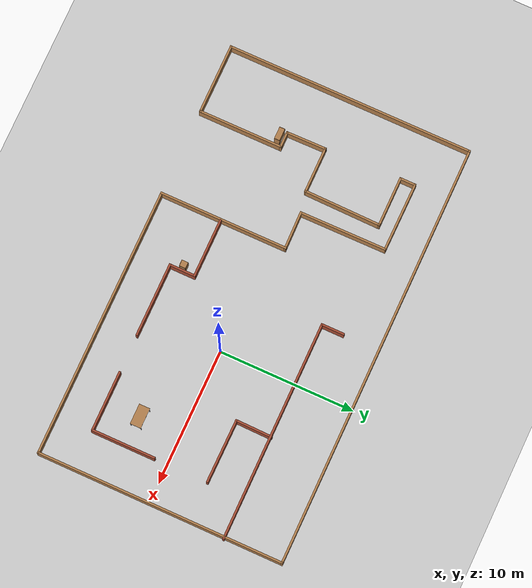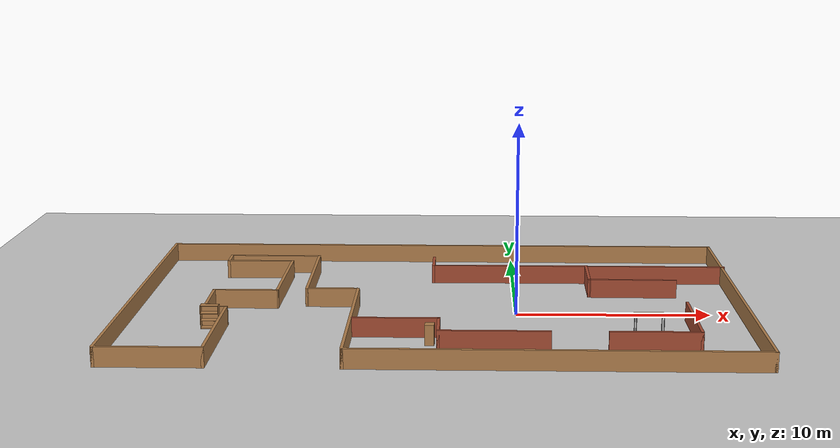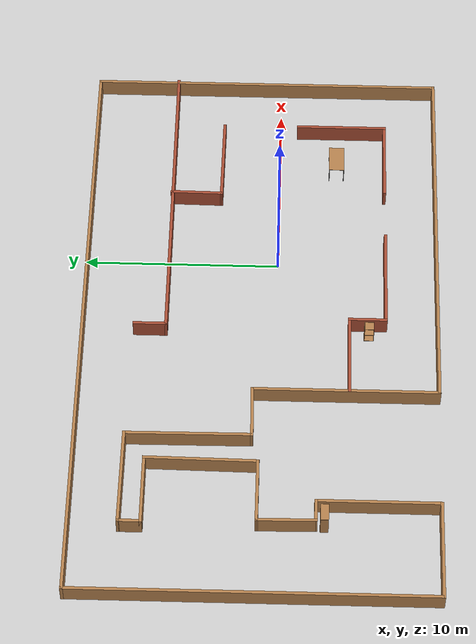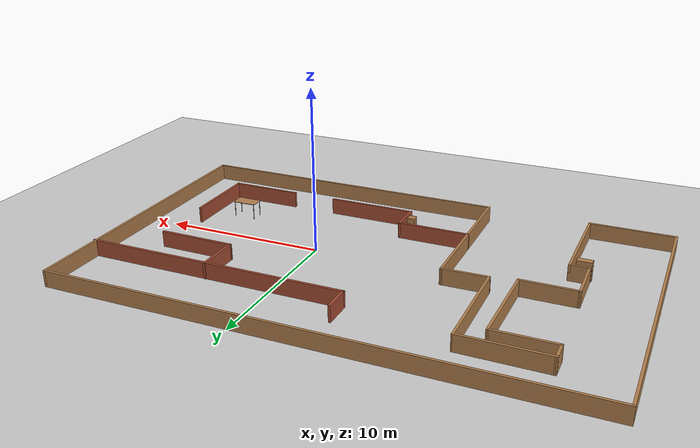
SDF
<sdf version="1.6">
 <world name="default">
  <light name="sun" type="directional">
   <pose>0 0 10 0 -0 0</pose>
   <diffuse>0.8 0.8 0.8 1</diffuse>
   <specular>0.2 0.2 0.2 1</specular>
   <attenuation>
    <range>1000</range>
    <constant>0.9</constant>
    <linear>0.01</linear>
    <quadratic>0.001</quadratic>
   </attenuation>
   <direction>-0.5 0.1 -0.9</direction>
  </light>
  <model name="ground_plane">
   <static>1</static>
   <link name="link">
    <collision name="collision">
     <geometry><plane><normal>0 0 1</normal><size>100 100</size></plane></geometry>
     <surface>
      <contact><collide_bitmask>65535</collide_bitmask></contact>
      <friction><ode><mu>100</mu><mu2>50</mu2></ode></friction>
     </surface>
    </collision>
    <visual name="visual">
     <cast_shadows>0</cast_shadows>
     <geometry><plane><normal>0 0 1</normal><size>100 100</size></plane></geometry>
     <material>
      <script><uri>file://media/materials/scripts/gazebo.material</uri><name>Gazebo/Grey</name></script>
     </material>
    </visual>
   </link>
  </model>
  <gravity>0 0 -9.8</gravity>
  <magnetic_field>6e-06 2.3e-05 -4.2e-05</magnetic_field>
  <atmosphere type="adiabatic"/>
  <physics name="default_physics" default="0" type="ode">
   <max_step_size>0.001</max_step_size>
   <real_time_factor>1</real_time_factor>
   <real_time_update_rate>1000</real_time_update_rate>
  </physics>
  <scene><ambient>0.4 0.4 0.4 1</ambient><background>0.7 0.7 0.7 1</background><shadows>1</shadows></scene>
  <audio><device>default</device></audio>
  <spherical_coordinates>
   <surface_model>EARTH_WGS84</surface_model>
   <latitude_deg>0</latitude_deg>
   <longitude_deg>0</longitude_deg>
   <elevation>0</elevation>
   <heading_deg>0</heading_deg>
  </spherical_coordinates>
  <model name="world1">
   <pose>-4.0635 0.825 0 0 -0 0</pose>
   <link name="Wall_0">
    <collision name="Wall_0_Collision">
     <geometry><box><size>9.5 0.15 1</size></box></geometry>
     <pose>0 0 0.5 0 -0 0</pose>
    </collision>
    <visual name="Wall_0_Visual">
     <pose>0 0 0.5 0 -0 0</pose>
     <geometry><box><size>9.5 0.15 1</size></box></geometry>
     <material>
      <script><uri>file://media/materials/scripts/gazebo.material</uri><name>Gazebo/Wood</name></script>
      <ambient>1 1 1 1</ambient>
     </material>
     <meta><layer>0</layer></meta>
    </visual>
    <pose>-4.2225 -4.375 0 0 -0 -1.5708</pose>
   </link>
   <link name="Wall_1">
    <collision name="Wall_1_Collision">
     <geometry><box><size>20 0.15 1</size></box></geometry>
     <pose>0 0 0.5 0 -0 0</pose>
    </collision>
    <visual name="Wall_1_Visual">
     <pose>0 0 0.5 0 -0 0</pose>
     <geometry><box><size>20 0.15 1</size></box></geometry>
     <material>
      <script><uri>file://media/materials/scripts/gazebo.material</uri><name>Gazebo/Wood</name></script>
      <ambient>1 1 1 1</ambient>
     </material>
     <meta><layer>0</layer></meta>
    </visual>
    <pose>5.7025 -9.05 0 0 -0 0</pose>
   </link>
   <link name="Wall_10">
    <collision name="Wall_10_Collision">
     <geometry><box><size>5.73247 0.15 1</size></box></geometry>
     <pose>0 0 0.5 0 -0 0</pose>
    </collision>
    <visual name="Wall_10_Visual">
     <pose>0 0 0.5 0 -0 0</pose>
     <geometry><box><size>5.73247 0.15 1</size></box></geometry>
     <material>
      <script><uri>file://media/materials/scripts/gazebo.material</uri><name>Gazebo/Wood</name></script>
      <ambient>1 1 1 1</ambient>
     </material>
     <meta><layer>0</layer></meta>
    </visual>
    <pose>-8.413 2.709 0 0 -0 1.55629</pose>
   </link>
   <link name="Wall_11">
    <collision name="Wall_11_Collision">
     <geometry><box><size>3.75 0.15 1</size></box></geometry>
     <pose>0 0 0.5 0 -0 0</pose>
    </collision>
    <visual name="Wall_11_Visual">
     <pose>0 0 0.5 0 -0 0</pose>
     <geometry><box><size>3.75 0.15 1</size></box></geometry>
     <material>
      <script><uri>file://media/materials/scripts/gazebo.material</uri><name>Gazebo/Wood</name></script>
      <ambient>1 1 1 1</ambient>
     </material>
     <meta><layer>0</layer></meta>
    </visual>
    <pose>-10.1725 5.5 0 0 -0 3.14159</pose>
   </link>
   <link name="Wall_12">
    <collision name="Wall_12_Collision">
     <geometry><box><size>1.25 0.15 1</size></box></geometry>
     <pose>0 0 0.5 0 -0 0</pose>
    </collision>
    <visual name="Wall_12_Visual">
     <pose>0 0 0.5 0 -0 0</pose>
     <geometry><box><size>1.25 0.15 1</size></box></geometry>
     <material>
      <script><uri>file://media/materials/scripts/gazebo.material</uri><name>Gazebo/Wood</name></script>
      <ambient>1 1 1 1</ambient>
     </material>
     <meta><layer>0</layer></meta>
    </visual>
    <pose>-11.9725 6.05 0 0 -0 1.5708</pose>
   </link>
   <link name="Wall_13">
    <collision name="Wall_13_Collision">
     <geometry><box><size>5.1506 0.15 1</size></box></geometry>
     <pose>0 0 0.5 0 -0 0</pose>
    </collision>
    <visual name="Wall_13_Visual">
     <pose>0 0 0.5 0 -0 0</pose>
     <geometry><box><size>5.1506 0.15 1</size></box></geometry>
     <material>
      <script><uri>file://media/materials/scripts/gazebo.material</uri><name>Gazebo/Wood</name></script>
      <ambient>1 1 1 1</ambient>
     </material>
     <meta><layer>0</layer></meta>
    </visual>
    <pose>-9.472 6.58 0 0 -0 -0.007998</pose>
   </link>
   <link name="Wall_14">
    <collision name="Wall_14_Collision">
     <geometry><box><size>6.45976 0.15 1</size></box></geometry>
     <pose>0 0 0.5 0 -0 0</pose>
    </collision>
    <visual name="Wall_14_Visual">
     <pose>0 0 0.5 0 -0 0</pose>
     <geometry><box><size>6.45976 0.15 1</size></box></geometry>
     <material>
      <script><uri>file://media/materials/scripts/gazebo.material</uri><name>Gazebo/Wood</name></script>
      <ambient>1 1 1 1</ambient>
     </material>
     <meta><layer>0</layer></meta>
    </visual>
    <pose>-6.9515 3.405 0 0 -0 -1.56446</pose>
   </link>
   <link name="Wall_15">
    <collision name="Wall_15_Collision">
     <geometry><box><size>2.85985 0.15 1</size></box></geometry>
     <pose>0 0 0.5 0 -0 0</pose>
    </collision>
    <visual name="Wall_15_Visual">
     <pose>0 0 0.5 0 -0 0</pose>
     <geometry><box><size>2.85985 0.15 1</size></box></geometry>
     <material>
      <script><uri>file://media/materials/scripts/gazebo.material</uri><name>Gazebo/Wood</name></script>
      <ambient>1 1 1 1</ambient>
     </material>
     <meta><layer>0</layer></meta>
    </visual>
    <pose>-5.577 0.275 0 0 -0 0.018455</pose>
   </link>
   <link name="Wall_17">
    <collision name="Wall_17_Collision">
     <geometry><box><size>16.25 0.15 1</size></box></geometry>
     <pose>0 0 0.5 0 -0 0</pose>
    </collision>
    <visual name="Wall_17_Visual">
     <pose>0 0 0.5 0 -0 0</pose>
     <geometry><box><size>16.25 0.15 1</size></box></geometry>
     <material>
      <script><uri>file://media/materials/scripts/gazebo.material</uri><name>Gazebo/Bricks</name></script>
      <ambient>1 1 1 1</ambient>
     </material>
     <meta><layer>0</layer></meta>
    </visual>
    <pose>7.6725 4.791 0 0 -0 3.14159</pose>
   </link>
   <link name="Wall_18">
    <collision name="Wall_18_Collision">
     <geometry><box><size>1.75 0.15 1</size></box></geometry>
     <pose>0 0 0.5 0 -0 0</pose>
    </collision>
    <visual name="Wall_18_Visual">
     <pose>0 0 0.5 0 -0 0</pose>
     <geometry><box><size>1.75 0.15 1</size></box></geometry>
     <material>
      <script><uri>file://media/materials/scripts/gazebo.material</uri><name>Gazebo/Bricks</name></script>
      <ambient>1 1 1 1</ambient>
     </material>
     <meta><layer>0</layer></meta>
    </visual>
    <pose>-0.3775 5.591 0 0 -0 1.5708</pose>
   </link>
   <link name="Wall_2">
    <collision name="Wall_2_Collision">
     <geometry><box><size>18.25 0.15 1</size></box></geometry>
     <pose>0 0 0.5 0 -0 0</pose>
    </collision>
    <visual name="Wall_2_Visual">
     <pose>0 0 0.5 0 -0 0</pose>
     <geometry><box><size>18.25 0.15 1</size></box></geometry>
     <material>
      <script><uri>file://media/materials/scripts/gazebo.material</uri><name>Gazebo/Wood</name></script>
      <ambient>1 1 1 1</ambient>
     </material>
     <meta><layer>0</layer></meta>
    </visual>
    <pose>15.6275 0 0 0 -0 1.5708</pose>
   </link>
   <link name="Wall_20">
    <collision name="Wall_20_Collision">
     <geometry><box><size>4.5 0.15 1</size></box></geometry>
     <pose>0 0 0.5 0 -0 0</pose>
    </collision>
    <visual name="Wall_20_Visual">
     <pose>0 0 0.5 0 -0 0</pose>
     <geometry><box><size>4.5 0.15 1</size></box></geometry>
     <material>
      <script><uri>file://media/materials/scripts/gazebo.material</uri><name>Gazebo/Bricks</name></script>
      <ambient>1 1 1 1</ambient>
     </material>
     <meta><layer>0</layer></meta>
    </visual>
    <pose>-2.0475 -4.554 0 0 -0 0</pose>
   </link>
   <link name="Wall_21">
    <collision name="Wall_21_Collision">
     <geometry><box><size>2 0.15 1</size></box></geometry>
     <pose>0 0 0.5 0 -0 0</pose>
    </collision>
    <visual name="Wall_21_Visual">
     <pose>0 0 0.5 0 -0 0</pose>
     <geometry><box><size>2 0.15 1</size></box></geometry>
     <material>
      <script><uri>file://media/materials/scripts/gazebo.material</uri><name>Gazebo/Bricks</name></script>
      <ambient>1 1 1 1</ambient>
     </material>
     <meta><layer>0</layer></meta>
    </visual>
    <pose>0.1275 -5.479 0 0 -0 -1.5708</pose>
   </link>
   <link name="Wall_22">
    <collision name="Wall_22_Collision">
     <geometry><box><size>5.5 0.15 1</size></box></geometry>
     <pose>0 0 0.5 0 -0 0</pose>
    </collision>
    <visual name="Wall_22_Visual">
     <pose>0 0 0.5 0 -0 0</pose>
     <geometry><box><size>5.5 0.15 1</size></box></geometry>
     <material>
      <script><uri>file://media/materials/scripts/gazebo.material</uri><name>Gazebo/Bricks</name></script>
      <ambient>1 1 1 1</ambient>
     </material>
     <meta><layer>0</layer></meta>
    </visual>
    <pose>2.8025 -6.404 0 0 -0 0</pose>
   </link>
   <link name="Wall_24">
    <collision name="Wall_24_Collision">
     <geometry><box><size>4.5 0.15 1</size></box></geometry>
     <pose>0 0 0.5 0 -0 0</pose>
    </collision>
    <visual name="Wall_24_Visual">
     <pose>0 0 0.5 0 -0 0</pose>
     <geometry><box><size>4.5 0.15 1</size></box></geometry>
     <material>
      <script><uri>file://media/materials/scripts/gazebo.material</uri><name>Gazebo/Bricks</name></script>
      <ambient>1 1 1 1</ambient>
     </material>
     <meta><layer>0</layer></meta>
    </visual>
    <pose>10.5345 -6.375 0 0 -0 0</pose>
   </link>
   <link name="Wall_25">
    <collision name="Wall_25_Collision">
     <geometry><box><size>4.75 0.15 1</size></box></geometry>
     <pose>0 0 0.5 0 -0 0</pose>
    </collision>
    <visual name="Wall_25_Visual">
     <pose>0 0 0.5 0 -0 0</pose>
     <geometry><box><size>4.75 0.15 1</size></box></geometry>
     <material>
      <script><uri>file://media/materials/scripts/gazebo.material</uri><name>Gazebo/Bricks</name></script>
      <ambient>1 1 1 1</ambient>
     </material>
     <meta><layer>0</layer></meta>
    </visual>
    <pose>12.7095 -4.075 0 0 -0 1.5708</pose>
   </link>
   <link name="Wall_27">
    <collision name="Wall_27_Collision">
     <geometry><box><size>2.75 0.15 1</size></box></geometry>
     <pose>0 0 0.5 0 -0 0</pose>
    </collision>
    <visual name="Wall_27_Visual">
     <pose>0 0 0.5 0 -0 0</pose>
     <geometry><box><size>2.75 0.15 1</size></box></geometry>
     <material>
      <script><uri>file://media/materials/scripts/gazebo.material</uri><name>Gazebo/Bricks</name></script>
      <ambient>1 1 1 1</ambient>
     </material>
     <meta><layer>0</layer></meta>
    </visual>
    <pose>8.0965 3.531 0 0 -0 -1.58618</pose>
   </link>
   <link name="Wall_28">
    <collision name="Wall_28_Collision">
     <geometry><box><size>4.7492 0.15 1</size></box></geometry>
     <pose>0 0 0.5 0 -0 0</pose>
    </collision>
    <visual name="Wall_28_Visual">
     <pose>0 0 0.5 0 -0 0</pose>
     <geometry><box><size>4.7492 0.15 1</size></box></geometry>
     <material>
      <script><uri>file://media/materials/scripts/gazebo.material</uri><name>Gazebo/Bricks</name></script>
      <ambient>1 1 1 1</ambient>
     </material>
     <meta><layer>0</layer></meta>
    </visual>
    <pose>10.376 2.211 0 0 -0 -0.008697</pose>
   </link>
   <link name="Wall_3">
    <collision name="Wall_3_Collision">
     <geometry><box><size>31.5 0.15 1</size></box></geometry>
     <pose>0 0 0.5 0 -0 0</pose>
    </collision>
    <visual name="Wall_3_Visual">
     <pose>0 0 0.5 0 -0 0</pose>
     <geometry><box><size>31.5 0.15 1</size></box></geometry>
     <material>
      <script><uri>file://media/materials/scripts/gazebo.material</uri><name>Gazebo/Wood</name></script>
      <ambient>1 1 1 1</ambient>
     </material>
     <meta><layer>0</layer></meta>
    </visual>
    <pose>-0.0475 9.05 0 0 -0 3.14159</pose>
   </link>
   <link name="Wall_4">
    <collision name="Wall_4_Collision">
     <geometry><box><size>18.25 0.15 1</size></box></geometry>
     <pose>0 0 0.5 0 -0 0</pose>
    </collision>
    <visual name="Wall_4_Visual">
     <pose>0 0 0.5 0 -0 0</pose>
     <geometry><box><size>18.25 0.15 1</size></box></geometry>
     <material>
      <script><uri>file://media/materials/scripts/gazebo.material</uri><name>Gazebo/Wood</name></script>
      <ambient>1 1 1 1</ambient>
     </material>
     <meta><layer>0</layer></meta>
    </visual>
    <pose>-15.7225 0 0 0 -0 -1.5708</pose>
   </link>
   <link name="Wall_5">
    <collision name="Wall_5_Collision">
     <geometry><box><size>5.25 0.15 1</size></box></geometry>
     <pose>0 0 0.5 0 -0 0</pose>
    </collision>
    <visual name="Wall_5_Visual">
     <pose>0 0 0.5 0 -0 0</pose>
     <geometry><box><size>5.25 0.15 1</size></box></geometry>
     <material>
      <script><uri>file://media/materials/scripts/gazebo.material</uri><name>Gazebo/Wood</name></script>
      <ambient>1 1 1 1</ambient>
     </material>
     <meta><layer>0</layer></meta>
    </visual>
    <pose>-13.1725 -9.05 0 0 -0 0</pose>
   </link>
   <link name="Wall_6">
    <collision name="Wall_6_Collision">
     <geometry><box><size>6.25 0.15 1</size></box></geometry>
     <pose>0 0 0.5 0 -0 0</pose>
    </collision>
    <visual name="Wall_6_Visual">
     <pose>0 0 0.5 0 -0 0</pose>
     <geometry><box><size>6.25 0.15 1</size></box></geometry>
     <material>
      <script><uri>file://media/materials/scripts/gazebo.material</uri><name>Gazebo/Wood</name></script>
      <ambient>1 1 1 1</ambient>
     </material>
     <meta><layer>0</layer></meta>
    </visual>
    <pose>-10.6225 -6 0 0 -0 1.5708</pose>
   </link>
   <link name="Wall_7">
    <collision name="Wall_7_Collision">
     <geometry><box><size>1.25 0.15 1</size></box></geometry>
     <pose>0 0 0.5 0 -0 0</pose>
    </collision>
    <visual name="Wall_7_Visual">
     <pose>0 0 0.5 0 -0 0</pose>
     <geometry><box><size>1.25 0.15 1</size></box></geometry>
     <material>
      <script><uri>file://media/materials/scripts/gazebo.material</uri><name>Gazebo/Wood</name></script>
      <ambient>1 1 1 1</ambient>
     </material>
     <meta><layer>0</layer></meta>
    </visual>
    <pose>-11.1725 -2.95 0 0 -0 3.14159</pose>
   </link>
   <link name="Wall_8">
    <collision name="Wall_8_Collision">
     <geometry><box><size>3.01796 0.15 1</size></box></geometry>
     <pose>0 0 0.5 0 -0 0</pose>
    </collision>
    <visual name="Wall_8_Visual">
     <pose>0 0 0.5 0 -0 0</pose>
     <geometry><box><size>3.01796 0.15 1</size></box></geometry>
     <material>
      <script><uri>file://media/materials/scripts/gazebo.material</uri><name>Gazebo/Wood</name></script>
      <ambient>1 1 1 1</ambient>
     </material>
     <meta><layer>0</layer></meta>
    </visual>
    <pose>-11.7425 -1.516 0 0 -0 1.58474</pose>
   </link>
   <link name="Wall_9">
    <collision name="Wall_9_Collision">
     <geometry><box><size>3.45907 0.15 1</size></box></geometry>
     <pose>0 0 0.5 0 -0 0</pose>
    </collision>
    <visual name="Wall_9_Visual">
     <pose>0 0 0.5 0 -0 0</pose>
     <geometry><box><size>3.45907 0.15 1</size></box></geometry>
     <material>
      <script><uri>file://media/materials/scripts/gazebo.material</uri><name>Gazebo/Wood</name></script>
      <ambient>1 1 1 1</ambient>
     </material>
     <meta><layer>0</layer></meta>
    </visual>
    <pose>-10.108 -0.082 0 0 -0 0</pose>
   </link>
   <static>1</static>
  </model>
  <model name="cabinet">
   <static>1</static>
   <link name="cabinet_bottom_plate">
    <inertial>
     <pose>0 0 -1 0 -0 0</pose>
     <inertia><ixx>2.05</ixx><ixy>0</ixy><ixz>0</ixz><iyy>2.05</iyy><iyz>0</iyz><izz>2.05</izz></inertia>
     <mass>25</mass>
    </inertial>
    <collision name="cabinet_bottom_plate_geom">
     <pose>0 0 0.01 0 -0 0</pose>
     <geometry><box><size>0.45 0.45 0.02</size></box></geometry>
    </collision>
    <visual name="cabinet_bottom_plate_geom_visual">
     <pose>0 0 0.01 0 -0 0</pose>
     <geometry><box><size>0.45 0.45 0.02</size></box></geometry>
     <material>
      <script><uri>file://media/materials/scripts/gazebo.material</uri><name>Gazebo/Wood</name></script>
     </material>
    </visual>
    <collision name="cabinet_bottom_plate_geom_cabinet_back_plate">
     <pose>0.235 0 0.51 0 -0 0</pose>
     <geometry><box><size>0.02 0.45 1.02</size></box></geometry>
    </collision>
    <visual name="cabinet_bottom_plate_geom_cabinet_back_plate_visual">
     <pose>0.235 0 0.51 0 -0 0</pose>
     <geometry><box><size>0.02 0.45 1.02</size></box></geometry>
     <material>
      <script><uri>file://media/materials/scripts/gazebo.material</uri><name>Gazebo/Wood</name></script>
     </material>
    </visual>
    <collision name="cabinet_bottom_plate_geom_cabinet_left_plate">
     <pose>0 0.235 0.51 0 -0 0</pose>
     <geometry><box><size>0.45 0.02 1.02</size></box></geometry>
    </collision>
    <visual name="cabinet_bottom_plate_geom_cabinet_left_plate_visual">
     <pose>0 0.235 0.51 0 -0 0</pose>
     <geometry><box><size>0.45 0.02 1.02</size></box></geometry>
     <material>
      <script><uri>file://media/materials/scripts/gazebo.material</uri><name>Gazebo/Wood</name></script>
     </material>
    </visual>
    <collision name="cabinet_bottom_plate_geom_cabinet_middle_plate">
     <pose>0 0 0.51 0 -0 0</pose>
     <geometry><box><size>0.45 0.45 0.02</size></box></geometry>
    </collision>
    <visual name="cabinet_bottom_plate_geom_cabinet_middle_plate_visual">
     <pose>0 0 0.51 0 -0 0</pose>
     <geometry><box><size>0.45 0.45 0.02</size></box></geometry>
     <material>
      <script><uri>file://media/materials/scripts/gazebo.material</uri><name>Gazebo/Wood</name></script>
     </material>
    </visual>
    <collision name="cabinet_bottom_plate_geom_cabinet_right_plate">
     <pose>0 -0.235 0.51 0 -0 0</pose>
     <geometry><box><size>0.45 0.02 1.02</size></box></geometry>
    </collision>
    <visual name="cabinet_bottom_plate_geom_cabinet_right_plate_visual">
     <pose>0 -0.235 0.51 0 -0 0</pose>
     <geometry><box><size>0.45 0.02 1.02</size></box></geometry>
     <material>
      <script><uri>file://media/materials/scripts/gazebo.material</uri><name>Gazebo/Wood</name></script>
     </material>
    </visual>
    <collision name="cabinet_bottom_plate_geom_cabinet_top_plate">
     <pose>0 0 1.01 0 -0 0</pose>
     <geometry><box><size>0.45 0.45 0.02</size></box></geometry>
    </collision>
    <visual name="cabinet_bottom_plate_geom_cabinet_top_plate_visual">
     <pose>0 0 1.01 0 -0 0</pose>
     <geometry><box><size>0.45 0.45 0.02</size></box></geometry>
     <material>
      <script><uri>file://media/materials/scripts/gazebo.material</uri><name>Gazebo/Wood</name></script>
     </material>
    </visual>
   </link>
   <pose>-4.35913 -4.73021 0 0 -0 0</pose>
  </model>
  <model name="bookshelf">
   <static>1</static>
   <link name="link">
    <inertial><mass>1</mass></inertial>
    <collision name="back">
     <pose>0 0.005 0.6 0 -0 0</pose>
     <geometry><box><size>0.9 0.01 1.2</size></box></geometry>
    </collision>
    <visual name="visual1">
     <pose>0 0.005 0.6 0 -0 0</pose>
     <geometry><box><size>0.9 0.01 1.2</size></box></geometry>
     <material>
      <script><uri>file://media/materials/scripts/gazebo.material</uri><name>Gazebo/Wood</name></script>
     </material>
    </visual>
    <collision name="left_side">
     <pose>0.45 -0.195 0.6 0 -0 0</pose>
     <geometry><box><size>0.02 0.4 1.2</size></box></geometry>
    </collision>
    <visual name="visual2">
     <pose>0.45 -0.195 0.6 0 -0 0</pose>
     <geometry><box><size>0.02 0.4 1.2</size></box></geometry>
     <material>
      <script><uri>file://media/materials/scripts/gazebo.material</uri><name>Gazebo/Wood</name></script>
     </material>
    </visual>
    <collision name="right_side">
     <pose>-0.45 -0.195 0.6 0 -0 0</pose>
     <geometry><box><size>0.02 0.4 1.2</size></box></geometry>
    </collision>
    <visual name="visual3">
     <pose>-0.45 -0.195 0.6 0 -0 0</pose>
     <geometry><box><size>0.02 0.4 1.2</size></box></geometry>
     <material>
      <script><uri>file://media/materials/scripts/gazebo.material</uri><name>Gazebo/Wood</name></script>
     </material>
    </visual>
    <collision name="bottom">
     <pose>0 -0.195 0.03 0 -0 0</pose>
     <geometry><box><size>0.88 0.4 0.06</size></box></geometry>
    </collision>
    <visual name="visual4">
     <pose>0 -0.195 0.03 0 -0 0</pose>
     <geometry><box><size>0.88 0.4 0.06</size></box></geometry>
     <material>
      <script><uri>file://media/materials/scripts/gazebo.material</uri><name>Gazebo/Wood</name></script>
     </material>
    </visual>
    <collision name="top">
     <pose>0 -0.195 1.19 0 -0 0</pose>
     <geometry><box><size>0.88 0.4 0.02</size></box></geometry>
    </collision>
    <visual name="visual5">
     <pose>0 -0.195 1.19 0 -0 0</pose>
     <geometry><box><size>0.88 0.4 0.02</size></box></geometry>
     <material>
      <script><uri>file://media/materials/scripts/gazebo.material</uri><name>Gazebo/Wood</name></script>
     </material>
    </visual>
    <collision name="low_shelf">
     <pose>0 -0.195 0.43 0 -0 0</pose>
     <geometry><box><size>0.88 0.4 0.02</size></box></geometry>
    </collision>
    <visual name="visual6">
     <pose>0 -0.195 0.43 0 -0 0</pose>
     <geometry><box><size>0.88 0.4 0.02</size></box></geometry>
     <material>
      <script><uri>file://media/materials/scripts/gazebo.material</uri><name>Gazebo/Wood</name></script>
     </material>
    </visual>
    <collision name="high_shelf">
     <pose>0 -0.195 0.8 0 -0 0</pose>
     <geometry><box><size>0.88 0.4 0.02</size></box></geometry>
    </collision>
    <visual name="visual7">
     <pose>0 -0.195 0.8 0 -0 0</pose>
     <geometry><box><size>0.88 0.4 0.02</size></box></geometry>
     <material>
      <script><uri>file://media/materials/scripts/gazebo.material</uri><name>Gazebo/Wood</name></script>
     </material>
    </visual>
   </link>
   <pose>-15.436 -2.35168 0 0 -0 0</pose>
  </model>
  <model name="table">
   <static>1</static>
   <link name="link">
    <collision name="surface">
     <pose>0 0 1 0 -0 0</pose>
     <geometry><box><size>1.5 0.8 0.03</size></box></geometry>
     <surface><friction><ode><mu>0.6</mu><mu2>0.6</mu2></ode></friction></surface>
    </collision>
    <visual name="visual1">
     <pose>0 0 1 0 -0 0</pose>
     <geometry><box><size>1.5 0.8 0.03</size></box></geometry>
     <material>
      <script><uri>file://media/materials/scripts/gazebo.material</uri><name>Gazebo/Wood</name></script>
     </material>
    </visual>
    <collision name="front_left_leg">
     <pose>0.68 0.38 0.5 0 -0 0</pose>
     <geometry><cylinder><radius>0.02</radius><length>1</length></cylinder></geometry>
    </collision>
    <visual name="front_left_leg">
     <pose>0.68 0.38 0.5 0 -0 0</pose>
     <geometry><cylinder><radius>0.02</radius><length>1</length></cylinder></geometry>
     <material>
      <script><uri>file://media/materials/scripts/gazebo.material</uri><name>Gazebo/Grey</name></script>
     </material>
    </visual>
    <collision name="front_right_leg">
     <pose>0.68 -0.38 0.5 0 -0 0</pose>
     <geometry><cylinder><radius>0.02</radius><length>1</length></cylinder></geometry>
    </collision>
    <visual name="front_right_leg">
     <pose>0.68 -0.38 0.5 0 -0 0</pose>
     <geometry><cylinder><radius>0.02</radius><length>1</length></cylinder></geometry>
     <material>
      <script><uri>file://media/materials/scripts/gazebo.material</uri><name>Gazebo/Grey</name></script>
     </material>
    </visual>
    <collision name="back_right_leg">
     <pose>-0.68 -0.38 0.5 0 -0 0</pose>
     <geometry><cylinder><radius>0.02</radius><length>1</length></cylinder></geometry>
    </collision>
    <visual name="back_right_leg">
     <pose>-0.68 -0.38 0.5 0 -0 0</pose>
     <geometry><cylinder><radius>0.02</radius><length>1</length></cylinder></geometry>
     <material>
      <script><uri>file://media/materials/scripts/gazebo.material</uri><name>Gazebo/Grey</name></script>
     </material>
    </visual>
    <collision name="back_left_leg">
     <pose>-0.68 0.38 0.5 0 -0 0</pose>
     <geometry><cylinder><radius>0.02</radius><length>1</length></cylinder></geometry>
    </collision>
    <visual name="back_left_leg">
     <pose>-0.68 0.38 0.5 0 -0 0</pose>
     <geometry><cylinder><radius>0.02</radius><length>1</length></cylinder></geometry>
     <material>
      <script><uri>file://media/materials/scripts/gazebo.material</uri><name>Gazebo/Grey</name></script>
     </material>
    </visual>
   </link>
   <pose>6.45692 -3.00883 0 0 -0 0</pose>
  </model>
 </world>
</sdf>
